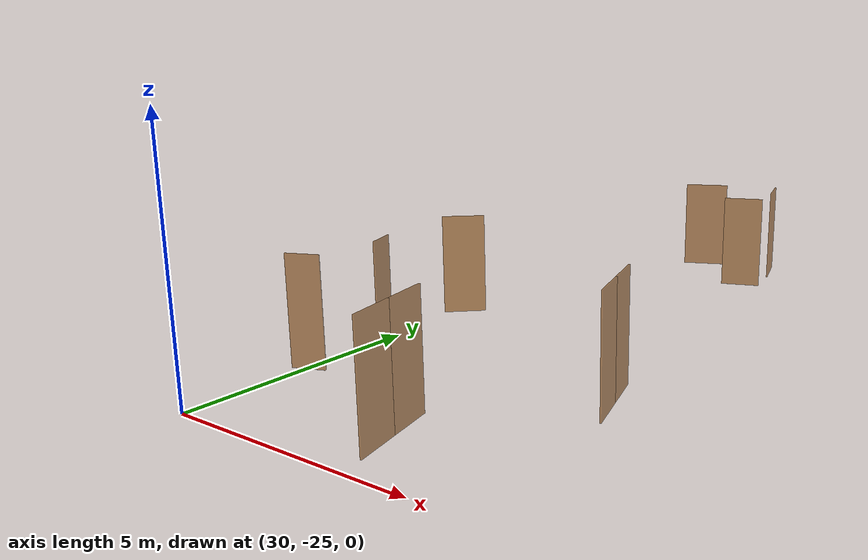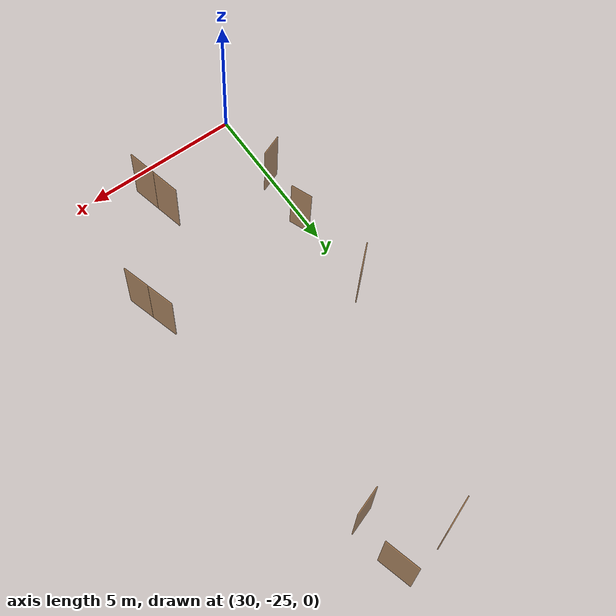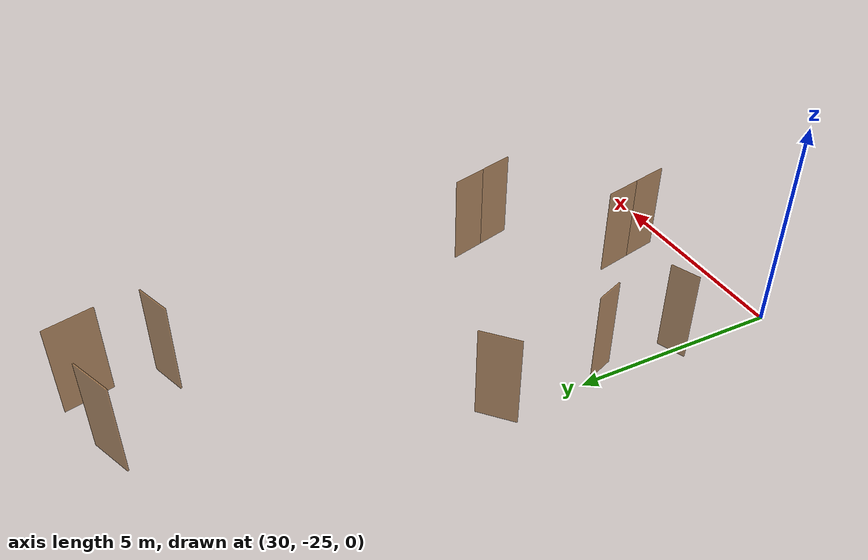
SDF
<sdf version="1.7">
 <world name="world">
  <include><uri>model://sun</uri></include>
  <model name="D25">
   <pose>32.5059833978375 -10.474679483126277 0.0 0 0 -2.751995442728913</pose>
   <link name="right">
    <pose>0 0 1.11 0 0 0</pose>
    <visual name="right_visual">
     <geometry><box><size>1.0874265515017651 0.03 2.2</size></box></geometry>
     <material><ambient>0.5 0.25 0 0.6</ambient><diffuse>0.5 0.25 0 0.6</diffuse></material>
    </visual>
    <collision name="right_collision">
     <geometry><box><size>1.0874265515017651 0.03 2.2</size></box></geometry>
     <surface><contact><collide_bitmask>0x02</collide_bitmask></contact></surface>
    </collision>
    <inertial>
     <mass>50.0</mass>
     <inertia><ixx>20.17041666666667</ixx><iyy>25.093735437129258</iyy><izz>4.930818770462587</izz></inertia>
    </inertial>
   </link>
   <joint name="right_joint" type="revolute">
    <parent>world</parent>
    <child>right</child>
    <axis><xyz>0 0 -1</xyz><limit><lower>0</lower><upper>1.57</upper></limit></axis>
    <pose>0.5487132757508826 0 0 0 0 0</pose>
   </joint>
   <plugin name="door_D25" filename="libdoor.so">
    <v_max_door>0.5</v_max_door>
    <a_max_door>0.3</a_max_door>
    <a_nom_door>0.15</a_nom_door>
    <dx_min_door>0.01</dx_min_door>
    <f_max_door>500.0</f_max_door>
    <door name="D25" type="SwingDoor" left_joint_name="empty_joint" right_joint_name="right_joint"/>
   </plugin>
  </model>
  <model name="D26">
   <pose>34.2552159440384 -12.10798325861495 0.0 0 0 -2.8019398110521796</pose>
   <link name="right">
    <pose>0 0 1.11 0 0 0</pose>
    <visual name="right_visual">
     <geometry><box><size>0.9189382125127755 0.03 2.2</size></box></geometry>
     <material><ambient>0.5 0.25 0 0.6</ambient><diffuse>0.5 0.25 0 0.6</diffuse></material>
    </visual>
    <collision name="right_collision">
     <geometry><box><size>0.9189382125127755 0.03 2.2</size></box></geometry>
     <surface><contact><collide_bitmask>0x02</collide_bitmask></contact></surface>
    </collision>
    <inertial>
     <mass>50.0</mass>
     <inertia><ixx>20.17041666666667</ixx><iyy>23.685197660067402</iyy><izz>3.5222809934007295</izz></inertia>
    </inertial>
   </link>
   <joint name="right_joint" type="revolute">
    <parent>world</parent>
    <child>right</child>
    <axis><xyz>0 0 1</xyz><limit><lower>0</lower><upper>1.57</upper></limit></axis>
    <pose>0.46446910625638776 0 0 0 0 0</pose>
   </joint>
   <plugin name="door_D26" filename="libdoor.so">
    <v_max_door>0.5</v_max_door>
    <a_max_door>0.3</a_max_door>
    <a_nom_door>0.15</a_nom_door>
    <dx_min_door>0.01</dx_min_door>
    <f_max_door>500.0</f_max_door>
    <door name="D26" type="SwingDoor" left_joint_name="empty_joint" right_joint_name="right_joint"/>
   </plugin>
  </model>
  <model name="D27">
   <pose>34.38611244508806 -10.436434940210901 0.0 0 0 1.8376123916784604</pose>
   <link name="right">
    <pose>0 0 1.11 0 0 0</pose>
    <visual name="right_visual">
     <geometry><box><size>1.140484263080397 0.03 2.2</size></box></geometry>
     <material><ambient>0.5 0.25 0 0.6</ambient><diffuse>0.5 0.25 0 0.6</diffuse></material>
    </visual>
    <collision name="right_collision">
     <geometry><box><size>1.140484263080397 0.03 2.2</size></box></geometry>
     <surface><contact><collide_bitmask>0x02</collide_bitmask></contact></surface>
    </collision>
    <inertial>
     <mass>50.0</mass>
     <inertia><ixx>20.17041666666667</ixx><iyy>25.58626814305849</iyy><izz>5.423351476391819</izz></inertia>
    </inertial>
   </link>
   <joint name="right_joint" type="revolute">
    <parent>world</parent>
    <child>right</child>
    <axis><xyz>0 0 1</xyz><limit><lower>0</lower><upper>1.57</upper></limit></axis>
    <pose>0.5752421315401985 0 0 0 0 0</pose>
   </joint>
   <plugin name="door_D27" filename="libdoor.so">
    <v_max_door>0.5</v_max_door>
    <a_max_door>0.3</a_max_door>
    <a_nom_door>0.15</a_nom_door>
    <dx_min_door>0.01</dx_min_door>
    <f_max_door>500.0</f_max_door>
    <door name="D27" type="SwingDoor" left_joint_name="empty_joint" right_joint_name="right_joint"/>
   </plugin>
  </model>
  <model name="D34">
   <pose>30.02350279966976 -17.86316094063495 0.0 0 0 -2.398090234745197</pose>
   <link name="right">
    <pose>0 0 1.11 0 0 0</pose>
    <visual name="right_visual">
     <geometry><box><size>0.9296826378944492 0.03 2.2</size></box></geometry>
     <material><ambient>0.5 0.25 0 0.6</ambient><diffuse>0.5 0.25 0 0.6</diffuse></material>
    </visual>
    <collision name="right_collision">
     <geometry><box><size>0.9296826378944492 0.03 2.2</size></box></geometry>
     <surface><contact><collide_bitmask>0x02</collide_bitmask></contact></surface>
    </collision>
    <inertial>
     <mass>50.0</mass>
     <inertia><ixx>20.17041666666667</ixx><iyy>23.76795753000993</iyy><izz>3.6050408633432567</izz></inertia>
    </inertial>
   </link>
   <joint name="right_joint" type="revolute">
    <parent>world</parent>
    <child>right</child>
    <axis><xyz>0 0 1</xyz><limit><lower>0</lower><upper>1.57</upper></limit></axis>
    <pose>0.4698413189472246 0 0 0 0 0</pose>
   </joint>
   <plugin name="door_D34" filename="libdoor.so">
    <v_max_door>0.5</v_max_door>
    <a_max_door>0.3</a_max_door>
    <a_nom_door>0.15</a_nom_door>
    <dx_min_door>0.01</dx_min_door>
    <f_max_door>500.0</f_max_door>
    <door name="D34" type="SwingDoor" left_joint_name="empty_joint" right_joint_name="right_joint"/>
   </plugin>
  </model>
  <model name="D36">
   <pose>30.246026851454168 -20.618987579907675 0.0 0 0 -1.1902600534225554</pose>
   <link name="right">
    <pose>0 0 1.11 0 0 0</pose>
    <visual name="right_visual">
     <geometry><box><size>0.6969917356089096 0.03 2.2</size></box></geometry>
     <material><ambient>0.5 0.25 0 0.6</ambient><diffuse>0.5 0.25 0 0.6</diffuse></material>
    </visual>
    <collision name="right_collision">
     <geometry><box><size>0.6969917356089096 0.03 2.2</size></box></geometry>
     <surface><contact><collide_bitmask>0x02</collide_bitmask></contact></surface>
    </collision>
    <inertial>
     <mass>50.0</mass>
     <inertia><ixx>20.17041666666667</ixx><iyy>22.19082283127967</iyy><izz>2.0279061646130008</izz></inertia>
    </inertial>
   </link>
   <joint name="right_joint" type="revolute">
    <parent>world</parent>
    <child>right</child>
    <axis><xyz>0 0 -1</xyz><limit><lower>0</lower><upper>1.57</upper></limit></axis>
    <pose>0.3534958678044548 0 0 0 0 0</pose>
   </joint>
   <plugin name="door_D36" filename="libdoor.so">
    <v_max_door>0.5</v_max_door>
    <a_max_door>0.3</a_max_door>
    <a_nom_door>0.15</a_nom_door>
    <dx_min_door>0.01</dx_min_door>
    <f_max_door>500.0</f_max_door>
    <door name="D36" type="SwingDoor" left_joint_name="empty_joint" right_joint_name="right_joint"/>
   </plugin>
  </model>
  <model name="D38">
   <pose>30.064251449561738 -22.42251371828309 0.0 0 0 -2.7697806558378066</pose>
   <link name="right">
    <pose>0 0 1.11 0 0 0</pose>
    <visual name="right_visual">
     <geometry><box><size>0.6877180863236964 0.03 2.2</size></box></geometry>
     <material><ambient>0.5 0.25 0 0.6</ambient><diffuse>0.5 0.25 0 0.6</diffuse></material>
    </visual>
    <collision name="right_collision">
     <geometry><box><size>0.6877180863236964 0.03 2.2</size></box></geometry>
     <surface><contact><collide_bitmask>0x02</collide_bitmask></contact></surface>
    </collision>
    <inertial>
     <mass>50.0</mass>
     <inertia><ixx>20.17041666666667</ixx><iyy>22.137317359403035</iyy><izz>1.974400692736363</izz></inertia>
    </inertial>
   </link>
   <joint name="right_joint" type="revolute">
    <parent>world</parent>
    <child>right</child>
    <axis><xyz>0 0 1</xyz><limit><lower>0</lower><upper>1.57</upper></limit></axis>
    <pose>0.3488590431618482 0 0 0 0 0</pose>
   </joint>
   <plugin name="door_D38" filename="libdoor.so">
    <v_max_door>0.5</v_max_door>
    <a_max_door>0.3</a_max_door>
    <a_nom_door>0.15</a_nom_door>
    <dx_min_door>0.01</dx_min_door>
    <f_max_door>500.0</f_max_door>
    <door name="D38" type="SwingDoor" left_joint_name="empty_joint" right_joint_name="right_joint"/>
   </plugin>
  </model>
  <model name="DH4">
   <pose>33.473536186683205 -23.660111679946446 0.0 0 0 1.7980422268106884</pose>
   <link name="right">
    <pose>0.4627793252032598 0 1.11 0 0 0</pose>
    <visual name="right_visual">
     <geometry><box><size>0.9155586504065196 0.03 2.2</size></box></geometry>
     <material><ambient>0.5 0.25 0 0.6</ambient><diffuse>0.5 0.25 0 0.6</diffuse></material>
    </visual>
    <collision name="right_collision">
     <geometry><box><size>0.9155586504065196 0.03 2.2</size></box></geometry>
     <surface><contact><collide_bitmask>0x02</collide_bitmask></contact></surface>
    </collision>
    <inertial>
     <mass>50.0</mass>
     <inertia><ixx>20.17041666666667</ixx><iyy>23.659365176392534</iyy><izz>3.496448509725865</izz></inertia>
    </inertial>
   </link>
   <joint name="right_joint" type="revolute">
    <parent>world</parent>
    <child>right</child>
    <axis><xyz>0 0 -1</xyz><limit><lower>0</lower><upper>1.57</upper></limit></axis>
    <pose>0.4627793252032598 0 0 0 0 0</pose>
   </joint>
   <link name="left">
    <pose>-0.4627793252032598 0 1.11 0 0 0</pose>
    <visual name="left_visual">
     <geometry><box><size>0.9155586504065196 0.03 2.2</size></box></geometry>
     <material><ambient>0.5 0.25 0 0.6</ambient><diffuse>0.5 0.25 0 0.6</diffuse></material>
    </visual>
    <collision name="left_collision">
     <geometry><box><size>0.9155586504065196 0.03 2.2</size></box></geometry>
     <surface><contact><collide_bitmask>0x02</collide_bitmask></contact></surface>
    </collision>
    <inertial>
     <mass>50.0</mass>
     <inertia><ixx>20.17041666666667</ixx><iyy>23.659365176392534</iyy><izz>3.496448509725865</izz></inertia>
    </inertial>
   </link>
   <joint name="left_joint" type="revolute">
    <parent>world</parent>
    <child>left</child>
    <axis><xyz>0 0 -1</xyz><limit><lower>-1.57</lower><upper>0</upper></limit></axis>
    <pose>-0.4627793252032598 0 0 0 0 0</pose>
   </joint>
   <plugin name="door_DH4" filename="libdoor.so">
    <v_max_door>0.5</v_max_door>
    <a_max_door>0.3</a_max_door>
    <a_nom_door>0.15</a_nom_door>
    <dx_min_door>0.01</dx_min_door>
    <f_max_door>500.0</f_max_door>
    <door name="DH4" type="DoubleSwingDoor" left_joint_name="left_joint" right_joint_name="right_joint"/>
   </plugin>
  </model>
  <model name="DH5">
   <pose>35.62023880389748 -20.62843489259213 0.0 0 0 1.8540049470727604</pose>
   <link name="right">
    <pose>0.4490797927728091 0 1.11 0 0 0</pose>
    <visual name="right_visual">
     <geometry><box><size>0.8881595855456182 0.03 2.2</size></box></geometry>
     <material><ambient>0.5 0.25 0 0.6</ambient><diffuse>0.5 0.25 0 0.6</diffuse></material>
    </visual>
    <collision name="right_collision">
     <geometry><box><size>0.8881595855456182 0.03 2.2</size></box></geometry>
     <surface><contact><collide_bitmask>0x02</collide_bitmask></contact></surface>
    </collision>
    <inertial>
     <mass>50.0</mass>
     <inertia><ixx>20.17041666666667</ixx><iyy>23.453447705819023</iyy><izz>3.2905310391523517</izz></inertia>
    </inertial>
   </link>
   <joint name="right_joint" type="revolute">
    <parent>world</parent>
    <child>right</child>
    <axis><xyz>0 0 -1</xyz><limit><lower>0</lower><upper>1.57</upper></limit></axis>
    <pose>0.4490797927728091 0 0 0 0 0</pose>
   </joint>
   <link name="left">
    <pose>-0.4490797927728091 0 1.11 0 0 0</pose>
    <visual name="left_visual">
     <geometry><box><size>0.8881595855456182 0.03 2.2</size></box></geometry>
     <material><ambient>0.5 0.25 0 0.6</ambient><diffuse>0.5 0.25 0 0.6</diffuse></material>
    </visual>
    <collision name="left_collision">
     <geometry><box><size>0.8881595855456182 0.03 2.2</size></box></geometry>
     <surface><contact><collide_bitmask>0x02</collide_bitmask></contact></surface>
    </collision>
    <inertial>
     <mass>50.0</mass>
     <inertia><ixx>20.17041666666667</ixx><iyy>23.453447705819023</iyy><izz>3.2905310391523517</izz></inertia>
    </inertial>
   </link>
   <joint name="left_joint" type="revolute">
    <parent>world</parent>
    <child>left</child>
    <axis><xyz>0 0 -1</xyz><limit><lower>-1.57</lower><upper>0</upper></limit></axis>
    <pose>-0.4490797927728091 0 0 0 0 0</pose>
   </joint>
   <plugin name="door_DH5" filename="libdoor.so">
    <v_max_door>0.5</v_max_door>
    <a_max_door>0.3</a_max_door>
    <a_nom_door>0.15</a_nom_door>
    <dx_min_door>0.01</dx_min_door>
    <f_max_door>500.0</f_max_door>
    <door name="DH5" type="DoubleSwingDoor" left_joint_name="left_joint" right_joint_name="right_joint"/>
   </plugin>
  </model>
 </world>
</sdf>
